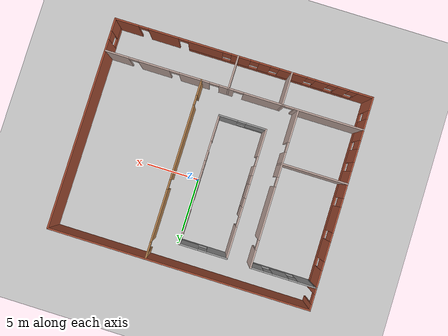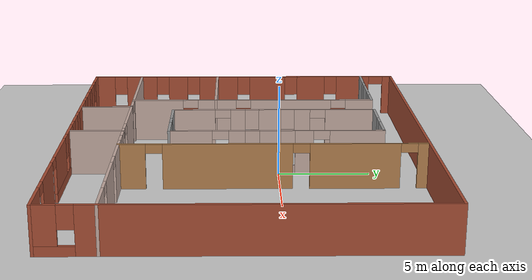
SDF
<sdf version="1.6">
 <world name="default">
  <model name="ground_plane">
   <static>1</static>
   <link name="link">
    <collision name="collision">
     <geometry><plane><normal>0 0 1</normal><size>100 100</size></plane></geometry>
     <surface>
      <contact><collide_bitmask>65535</collide_bitmask></contact>
      <friction><ode><mu>100</mu><mu2>50</mu2></ode></friction>
     </surface>
    </collision>
    <visual name="visual">
     <cast_shadows>0</cast_shadows>
     <geometry><plane><normal>0 0 1</normal><size>100 100</size></plane></geometry>
     <material>
      <script><uri>file://media/materials/scripts/gazebo.material</uri><name>Gazebo/Grey</name></script>
     </material>
    </visual>
   </link>
  </model>
  <model name="Building">
   <pose>-0.7082 -1.8337 0 0 -0 0</pose>
   <link name="Wall_0">
    <pose>-11.9964 0 0 0 -0 1.5708</pose>
    <visual name="Wall_0_Visual_0">
     <pose>-9.18969 0 1.25 0 -0 0</pose>
     <geometry><box><size>1.27061 0.15 2.5</size></box></geometry>
     <material>
      <script><uri>file://media/materials/scripts/gazebo.material</uri><name>Gazebo/Bricks</name></script>
      <ambient>0.760784 0.662745 0.627451 1</ambient>
     </material>
     <meta><layer>0</layer></meta>
    </visual>
    <collision name="Wall_0_Collision_0">
     <geometry><box><size>1.27061 0.15 2.5</size></box></geometry>
     <pose>-9.18969 0 1.25 0 -0 0</pose>
    </collision>
    <visual name="Wall_0_Visual_1">
     <pose>9.51531 0 1.25 0 -0 0</pose>
     <geometry><box><size>0.619384 0.15 2.5</size></box></geometry>
     <material>
      <script><uri>file://media/materials/scripts/gazebo.material</uri><name>Gazebo/Bricks</name></script>
      <ambient>0.760784 0.662745 0.627451 1</ambient>
     </material>
     <meta><layer>0</layer></meta>
    </visual>
    <collision name="Wall_0_Collision_1">
     <geometry><box><size>0.619384 0.15 2.5</size></box></geometry>
     <pose>9.51531 0 1.25 0 -0 0</pose>
    </collision>
    <visual name="Wall_0_Visual_2">
     <pose>-0.124385 0 0.25 0 -0 0</pose>
     <geometry><box><size>16.86 0.15 0.5</size></box></geometry>
     <material>
      <script><uri>file://media/materials/scripts/gazebo.material</uri><name>Gazebo/Bricks</name></script>
      <ambient>0.760784 0.662745 0.627451 1</ambient>
     </material>
     <meta><layer>0</layer></meta>
    </visual>
    <collision name="Wall_0_Collision_2">
     <geometry><box><size>16.86 0.15 0.5</size></box></geometry>
     <pose>-0.124385 0 0.25 0 -0 0</pose>
    </collision>
    <visual name="Wall_0_Visual_3">
     <pose>-6.76332 0 1.5 0 -0 0</pose>
     <geometry><box><size>1.98213 0.15 2</size></box></geometry>
     <material>
      <script><uri>file://media/materials/scripts/gazebo.material</uri><name>Gazebo/Bricks</name></script>
      <ambient>0.760784 0.662745 0.627451 1</ambient>
     </material>
     <meta><layer>0</layer></meta>
    </visual>
    <collision name="Wall_0_Collision_3">
     <geometry><box><size>1.98213 0.15 2</size></box></geometry>
     <pose>-6.76332 0 1.5 0 -0 0</pose>
    </collision>
    <visual name="Wall_0_Visual_4">
     <pose>-4.35571 0 1.5 0 -0 0</pose>
     <geometry><box><size>1.2331 0.15 2</size></box></geometry>
     <material>
      <script><uri>file://media/materials/scripts/gazebo.material</uri><name>Gazebo/Bricks</name></script>
      <ambient>0.760784 0.662745 0.627451 1</ambient>
     </material>
     <meta><layer>0</layer></meta>
    </visual>
    <collision name="Wall_0_Collision_4">
     <geometry><box><size>1.2331 0.15 2</size></box></geometry>
     <pose>-4.35571 0 1.5 0 -0 0</pose>
    </collision>
    <visual name="Wall_0_Visual_5">
     <pose>-1.68058 0 1.5 0 -0 0</pose>
     <geometry><box><size>2.51715 0.15 2</size></box></geometry>
     <material>
      <script><uri>file://media/materials/scripts/gazebo.material</uri><name>Gazebo/Bricks</name></script>
      <ambient>0.760784 0.662745 0.627451 1</ambient>
     </material>
     <meta><layer>0</layer></meta>
    </visual>
    <collision name="Wall_0_Collision_5">
     <geometry><box><size>2.51715 0.15 2</size></box></geometry>
     <pose>-1.68058 0 1.5 0 -0 0</pose>
    </collision>
    <visual name="Wall_0_Visual_6">
     <pose>1.55632 0 1.5 0 -0 0</pose>
     <geometry><box><size>2.35665 0.15 2</size></box></geometry>
     <material>
      <script><uri>file://media/materials/scripts/gazebo.material</uri><name>Gazebo/Bricks</name></script>
      <ambient>0.760784 0.662745 0.627451 1</ambient>
     </material>
     <meta><layer>0</layer></meta>
    </visual>
    <collision name="Wall_0_Collision_6">
     <geometry><box><size>2.35665 0.15 2</size></box></geometry>
     <pose>1.55632 0 1.5 0 -0 0</pose>
    </collision>
    <visual name="Wall_0_Visual_7">
     <pose>4.44545 0 1.5 0 -0 0</pose>
     <geometry><box><size>1.82162 0.15 2</size></box></geometry>
     <material>
      <script><uri>file://media/materials/scripts/gazebo.material</uri><name>Gazebo/Bricks</name></script>
      <ambient>0.760784 0.662745 0.627451 1</ambient>
     </material>
     <meta><layer>0</layer></meta>
    </visual>
    <collision name="Wall_0_Collision_7">
     <geometry><box><size>1.82162 0.15 2</size></box></geometry>
     <pose>4.44545 0 1.5 0 -0 0</pose>
    </collision>
    <visual name="Wall_0_Visual_8">
     <pose>7.23094 0 1.5 0 -0 0</pose>
     <geometry><box><size>2.14935 0.15 2</size></box></geometry>
     <material>
      <script><uri>file://media/materials/scripts/gazebo.material</uri><name>Gazebo/Bricks</name></script>
      <ambient>0.760784 0.662745 0.627451 1</ambient>
     </material>
     <meta><layer>0</layer></meta>
    </visual>
    <collision name="Wall_0_Collision_8">
     <geometry><box><size>2.14935 0.15 2</size></box></geometry>
     <pose>7.23094 0 1.5 0 -0 0</pose>
    </collision>
    <visual name="Wall_0_Visual_9">
     <pose>-8.15439 0 1.9 0 -0 0</pose>
     <geometry><box><size>0.8 0.15 1.2</size></box></geometry>
     <material>
      <script><uri>file://media/materials/scripts/gazebo.material</uri><name>Gazebo/Bricks</name></script>
      <ambient>0.760784 0.662745 0.627451 1</ambient>
     </material>
     <meta><layer>0</layer></meta>
    </visual>
    <collision name="Wall_0_Collision_9">
     <geometry><box><size>0.8 0.15 1.2</size></box></geometry>
     <pose>-8.15439 0 1.9 0 -0 0</pose>
    </collision>
    <visual name="Wall_0_Visual_10">
     <pose>-5.37226 0 1.9 0 -0 0</pose>
     <geometry><box><size>0.8 0.15 1.2</size></box></geometry>
     <material>
      <script><uri>file://media/materials/scripts/gazebo.material</uri><name>Gazebo/Bricks</name></script>
      <ambient>0.760784 0.662745 0.627451 1</ambient>
     </material>
     <meta><layer>0</layer></meta>
    </visual>
    <collision name="Wall_0_Collision_10">
     <geometry><box><size>0.8 0.15 1.2</size></box></geometry>
     <pose>-5.37226 0 1.9 0 -0 0</pose>
    </collision>
    <visual name="Wall_0_Visual_11">
     <pose>-3.33916 0 1.9 0 -0 0</pose>
     <geometry><box><size>0.8 0.15 1.2</size></box></geometry>
     <material>
      <script><uri>file://media/materials/scripts/gazebo.material</uri><name>Gazebo/Bricks</name></script>
      <ambient>0.760784 0.662745 0.627451 1</ambient>
     </material>
     <meta><layer>0</layer></meta>
    </visual>
    <collision name="Wall_0_Collision_11">
     <geometry><box><size>0.8 0.15 1.2</size></box></geometry>
     <pose>-3.33916 0 1.9 0 -0 0</pose>
    </collision>
    <visual name="Wall_0_Visual_12">
     <pose>-0.022006 0 1.9 0 -0 0</pose>
     <geometry><box><size>0.8 0.15 1.2</size></box></geometry>
     <material>
      <script><uri>file://media/materials/scripts/gazebo.material</uri><name>Gazebo/Bricks</name></script>
      <ambient>0.760784 0.662745 0.627451 1</ambient>
     </material>
     <meta><layer>0</layer></meta>
    </visual>
    <collision name="Wall_0_Collision_12">
     <geometry><box><size>0.8 0.15 1.2</size></box></geometry>
     <pose>-0.022006 0 1.9 0 -0 0</pose>
    </collision>
    <visual name="Wall_0_Visual_13">
     <pose>3.13464 0 1.9 0 -0 0</pose>
     <geometry><box><size>0.8 0.15 1.2</size></box></geometry>
     <material>
      <script><uri>file://media/materials/scripts/gazebo.material</uri><name>Gazebo/Bricks</name></script>
      <ambient>0.760784 0.662745 0.627451 1</ambient>
     </material>
     <meta><layer>0</layer></meta>
    </visual>
    <collision name="Wall_0_Collision_13">
     <geometry><box><size>0.8 0.15 1.2</size></box></geometry>
     <pose>3.13464 0 1.9 0 -0 0</pose>
    </collision>
    <visual name="Wall_0_Visual_14">
     <pose>5.75626 0 1.9 0 -0 0</pose>
     <geometry><box><size>0.8 0.15 1.2</size></box></geometry>
     <material>
      <script><uri>file://media/materials/scripts/gazebo.material</uri><name>Gazebo/Bricks</name></script>
      <ambient>0.760784 0.662745 0.627451 1</ambient>
     </material>
     <meta><layer>0</layer></meta>
    </visual>
    <collision name="Wall_0_Collision_14">
     <geometry><box><size>0.8 0.15 1.2</size></box></geometry>
     <pose>5.75626 0 1.9 0 -0 0</pose>
    </collision>
    <visual name="Wall_0_Visual_15">
     <pose>8.75562 0 2.25 0 -0 0</pose>
     <geometry><box><size>0.9 0.15 0.5</size></box></geometry>
     <material>
      <script><uri>file://media/materials/scripts/gazebo.material</uri><name>Gazebo/Bricks</name></script>
      <ambient>0.760784 0.662745 0.627451 1</ambient>
     </material>
     <meta><layer>0</layer></meta>
    </visual>
    <collision name="Wall_0_Collision_15">
     <geometry><box><size>0.9 0.15 0.5</size></box></geometry>
     <pose>8.75562 0 2.25 0 -0 0</pose>
    </collision>
   </link>
   <link name="Wall_12">
    <pose>3.00359 1.5 0 0 -0 1.5708</pose>
    <visual name="Wall_12_Visual_0">
     <pose>-7.57545 0 1.25 0 -0 0</pose>
     <geometry><box><size>1.49911 0.15 2.5</size></box></geometry>
     <material>
      <script><uri>file://media/materials/scripts/gazebo.material</uri><name>Gazebo/Wood</name></script>
      <ambient>0.760784 0.662745 0.627451 1</ambient>
     </material>
     <meta><layer>0</layer></meta>
    </visual>
    <collision name="Wall_12_Collision_0">
     <geometry><box><size>1.49911 0.15 2.5</size></box></geometry>
     <pose>-7.57545 0 1.25 0 -0 0</pose>
    </collision>
    <visual name="Wall_12_Visual_1">
     <pose>-2.46788 0 1.25 0 -0 0</pose>
     <geometry><box><size>6.91602 0.15 2.5</size></box></geometry>
     <material>
      <script><uri>file://media/materials/scripts/gazebo.material</uri><name>Gazebo/Wood</name></script>
      <ambient>0.760784 0.662745 0.627451 1</ambient>
     </material>
     <meta><layer>0</layer></meta>
    </visual>
    <collision name="Wall_12_Collision_1">
     <geometry><box><size>6.91602 0.15 2.5</size></box></geometry>
     <pose>-2.46788 0 1.25 0 -0 0</pose>
    </collision>
    <visual name="Wall_12_Visual_2">
     <pose>4.30135 0 1.25 0 -0 0</pose>
     <geometry><box><size>4.82244 0.15 2.5</size></box></geometry>
     <material>
      <script><uri>file://media/materials/scripts/gazebo.material</uri><name>Gazebo/Wood</name></script>
      <ambient>0.760784 0.662745 0.627451 1</ambient>
     </material>
     <meta><layer>0</layer></meta>
    </visual>
    <collision name="Wall_12_Collision_2">
     <geometry><box><size>4.82244 0.15 2.5</size></box></geometry>
     <pose>4.30135 0 1.25 0 -0 0</pose>
    </collision>
    <visual name="Wall_12_Visual_3">
     <pose>7.96878 0 1.25 0 -0 0</pose>
     <geometry><box><size>0.712432 0.15 2.5</size></box></geometry>
     <material>
      <script><uri>file://media/materials/scripts/gazebo.material</uri><name>Gazebo/Wood</name></script>
      <ambient>0.760784 0.662745 0.627451 1</ambient>
     </material>
     <meta><layer>0</layer></meta>
    </visual>
    <collision name="Wall_12_Collision_3">
     <geometry><box><size>0.712432 0.15 2.5</size></box></geometry>
     <pose>7.96878 0 1.25 0 -0 0</pose>
    </collision>
    <visual name="Wall_12_Visual_4">
     <pose>-6.37589 0 2.25 0 -0 0</pose>
     <geometry><box><size>0.9 0.15 0.5</size></box></geometry>
     <material>
      <script><uri>file://media/materials/scripts/gazebo.material</uri><name>Gazebo/Wood</name></script>
      <ambient>0.760784 0.662745 0.627451 1</ambient>
     </material>
     <meta><layer>0</layer></meta>
    </visual>
    <collision name="Wall_12_Collision_4">
     <geometry><box><size>0.9 0.15 0.5</size></box></geometry>
     <pose>-6.37589 0 2.25 0 -0 0</pose>
    </collision>
    <visual name="Wall_12_Visual_5">
     <pose>1.44013 0 2.25 0 -0 0</pose>
     <geometry><box><size>0.9 0.15 0.5</size></box></geometry>
     <material>
      <script><uri>file://media/materials/scripts/gazebo.material</uri><name>Gazebo/Wood</name></script>
      <ambient>0.760784 0.662745 0.627451 1</ambient>
     </material>
     <meta><layer>0</layer></meta>
    </visual>
    <collision name="Wall_12_Collision_5">
     <geometry><box><size>0.9 0.15 0.5</size></box></geometry>
     <pose>1.44013 0 2.25 0 -0 0</pose>
    </collision>
    <visual name="Wall_12_Visual_6">
     <pose>7.16257 0 2.25 0 -0 0</pose>
     <geometry><box><size>0.9 0.15 0.5</size></box></geometry>
     <material>
      <script><uri>file://media/materials/scripts/gazebo.material</uri><name>Gazebo/Wood</name></script>
      <ambient>0.760784 0.662745 0.627451 1</ambient>
     </material>
     <meta><layer>0</layer></meta>
    </visual>
    <collision name="Wall_12_Collision_6">
     <geometry><box><size>0.9 0.15 0.5</size></box></geometry>
     <pose>7.16257 0 2.25 0 -0 0</pose>
    </collision>
   </link>
   <link name="Wall_14">
    <collision name="Wall_14_Collision">
     <geometry><box><size>3.15 0.15 2.5</size></box></geometry>
     <pose>0 0 1.25 0 -0 0</pose>
    </collision>
    <visual name="Wall_14_Visual">
     <pose>0 0 1.25 0 -0 0</pose>
     <geometry><box><size>3.15 0.15 2.5</size></box></geometry>
     <material>
      <script><uri>file://media/materials/scripts/gazebo.material</uri><name>Gazebo/Grey</name></script>
      <ambient>0.760784 0.662745 0.627451 1</ambient>
     </material>
     <meta><layer>0</layer></meta>
    </visual>
    <pose>-4.49641 -8.25 0 0 -0 1.5708</pose>
   </link>
   <link name="Wall_16">
    <collision name="Wall_16_Collision">
     <geometry><box><size>3.15 0.15 2.5</size></box></geometry>
     <pose>0 0 1.25 0 -0 0</pose>
    </collision>
    <visual name="Wall_16_Visual">
     <pose>0 0 1.25 0 -0 0</pose>
     <geometry><box><size>3.15 0.15 2.5</size></box></geometry>
     <material>
      <script><uri>file://media/materials/scripts/gazebo.material</uri><name>Gazebo/Grey</name></script>
      <ambient>0.760784 0.662745 0.627451 1</ambient>
     </material>
     <meta><layer>0</layer></meta>
    </visual>
    <pose>0.50359 -8.25 0 0 -0 1.5708</pose>
   </link>
   <link name="Wall_18">
    <pose>-5.99641 0.5 0 0 0 -1.5708</pose>
    <visual name="Wall_18_Visual_0">
     <pose>-6.48888 0 1.25 0 -0 0</pose>
     <geometry><box><size>1.67224 0.15 2.5</size></box></geometry>
     <material>
      <script><uri>file://media/materials/scripts/gazebo.material</uri><name>Gazebo/Grey</name></script>
      <ambient>0.760784 0.662745 0.627451 1</ambient>
     </material>
     <meta><layer>0</layer></meta>
    </visual>
    <collision name="Wall_18_Collision_0">
     <geometry><box><size>1.67224 0.15 2.5</size></box></geometry>
     <pose>-6.48888 0 1.25 0 -0 0</pose>
    </collision>
    <visual name="Wall_18_Visual_1">
     <pose>-2.31363 0 1.25 0 -0 0</pose>
     <geometry><box><size>4.87827 0.15 2.5</size></box></geometry>
     <material>
      <script><uri>file://media/materials/scripts/gazebo.material</uri><name>Gazebo/Grey</name></script>
      <ambient>0.760784 0.662745 0.627451 1</ambient>
     </material>
     <meta><layer>0</layer></meta>
    </visual>
    <collision name="Wall_18_Collision_1">
     <geometry><box><size>4.87827 0.15 2.5</size></box></geometry>
     <pose>-2.31363 0 1.25 0 -0 0</pose>
    </collision>
    <visual name="Wall_18_Visual_2">
     <pose>2.18058 0 1.25 0 -0 0</pose>
     <geometry><box><size>2.31015 0.15 2.5</size></box></geometry>
     <material>
      <script><uri>file://media/materials/scripts/gazebo.material</uri><name>Gazebo/Grey</name></script>
      <ambient>0.760784 0.662745 0.627451 1</ambient>
     </material>
     <meta><layer>0</layer></meta>
    </visual>
    <collision name="Wall_18_Collision_2">
     <geometry><box><size>2.31015 0.15 2.5</size></box></geometry>
     <pose>2.18058 0 1.25 0 -0 0</pose>
    </collision>
    <visual name="Wall_18_Visual_3">
     <pose>5.78033 0 1.25 0 -0 0</pose>
     <geometry><box><size>3.08934 0.15 2.5</size></box></geometry>
     <material>
      <script><uri>file://media/materials/scripts/gazebo.material</uri><name>Gazebo/Grey</name></script>
      <ambient>0.760784 0.662745 0.627451 1</ambient>
     </material>
     <meta><layer>0</layer></meta>
    </visual>
    <collision name="Wall_18_Collision_3">
     <geometry><box><size>3.08934 0.15 2.5</size></box></geometry>
     <pose>5.78033 0 1.25 0 -0 0</pose>
    </collision>
    <visual name="Wall_18_Visual_4">
     <pose>-5.20276 0 2.25 0 -0 0</pose>
     <geometry><box><size>0.9 0.15 0.5</size></box></geometry>
     <material>
      <script><uri>file://media/materials/scripts/gazebo.material</uri><name>Gazebo/Grey</name></script>
      <ambient>0.760784 0.662745 0.627451 1</ambient>
     </material>
     <meta><layer>0</layer></meta>
    </visual>
    <collision name="Wall_18_Collision_4">
     <geometry><box><size>0.9 0.15 0.5</size></box></geometry>
     <pose>-5.20276 0 2.25 0 -0 0</pose>
    </collision>
    <visual name="Wall_18_Visual_5">
     <pose>0.575509 0 2.25 0 -0 0</pose>
     <geometry><box><size>0.9 0.15 0.5</size></box></geometry>
     <material>
      <script><uri>file://media/materials/scripts/gazebo.material</uri><name>Gazebo/Grey</name></script>
      <ambient>0.760784 0.662745 0.627451 1</ambient>
     </material>
     <meta><layer>0</layer></meta>
    </visual>
    <collision name="Wall_18_Collision_5">
     <geometry><box><size>0.9 0.15 0.5</size></box></geometry>
     <pose>0.575509 0 2.25 0 -0 0</pose>
    </collision>
    <visual name="Wall_18_Visual_6">
     <pose>3.78566 0 2.25 0 -0 0</pose>
     <geometry><box><size>0.9 0.15 0.5</size></box></geometry>
     <material>
      <script><uri>file://media/materials/scripts/gazebo.material</uri><name>Gazebo/Grey</name></script>
      <ambient>0.760784 0.662745 0.627451 1</ambient>
     </material>
     <meta><layer>0</layer></meta>
    </visual>
    <collision name="Wall_18_Collision_6">
     <geometry><box><size>0.9 0.15 0.5</size></box></geometry>
     <pose>3.78566 0 2.25 0 -0 0</pose>
    </collision>
   </link>
   <link name="Wall_2">
    <collision name="Wall_2_Collision">
     <geometry><box><size>24.15 0.15 2.5</size></box></geometry>
     <pose>0 0 1.25 0 -0 0</pose>
    </collision>
    <visual name="Wall_2_Visual">
     <pose>0 0 1.25 0 -0 0</pose>
     <geometry><box><size>24.15 0.15 2.5</size></box></geometry>
     <material>
      <script><uri>file://media/materials/scripts/gazebo.material</uri><name>Gazebo/Bricks</name></script>
      <ambient>0.760784 0.662745 0.627451 1</ambient>
     </material>
     <meta><layer>0</layer></meta>
    </visual>
    <pose>0.00359 9.75 0 0 -0 3.14159</pose>
   </link>
   <link name="Wall_20">
    <collision name="Wall_20_Collision">
     <geometry><box><size>0.29021 0.15 2.5</size></box></geometry>
     <pose>0 0 1.25 0 -0 0</pose>
    </collision>
    <visual name="Wall_20_Visual">
     <pose>0 0 1.25 0 -0 0</pose>
     <geometry><box><size>0.29021 0.15 2.5</size></box></geometry>
     <material>
      <script><uri>file://media/materials/scripts/gazebo.material</uri><name>Gazebo/Grey</name></script>
      <ambient>1 1 1 1</ambient>
     </material>
     <meta><layer>0</layer></meta>
    </visual>
    <pose>-11.9267 7.74293 0 0 -0 3.04054</pose>
   </link>
   <link name="Wall_21">
    <pose>-8.99641 7.75 0 0 -0 0</pose>
    <visual name="Wall_21_Visual_0">
     <pose>-2.17796 0 1.25 0 -0 0</pose>
     <geometry><box><size>1.79409 0.15 2.5</size></box></geometry>
     <material>
      <script><uri>file://media/materials/scripts/gazebo.material</uri><name>Gazebo/Grey</name></script>
      <ambient>1 1 1 1</ambient>
     </material>
     <meta><layer>0</layer></meta>
    </visual>
    <collision name="Wall_21_Collision_0">
     <geometry><box><size>1.79409 0.15 2.5</size></box></geometry>
     <pose>-2.17796 0 1.25 0 -0 0</pose>
    </collision>
    <visual name="Wall_21_Visual_1">
     <pose>0.897044 0 0.25 0 -0 0</pose>
     <geometry><box><size>4.35591 0.15 0.5</size></box></geometry>
     <material>
      <script><uri>file://media/materials/scripts/gazebo.material</uri><name>Gazebo/Grey</name></script>
      <ambient>1 1 1 1</ambient>
     </material>
     <meta><layer>0</layer></meta>
    </visual>
    <collision name="Wall_21_Collision_1">
     <geometry><box><size>4.35591 0.15 0.5</size></box></geometry>
     <pose>0.897044 0 0.25 0 -0 0</pose>
    </collision>
    <visual name="Wall_21_Visual_2">
     <pose>0.269391 0 1.5 0 -0 0</pose>
     <geometry><box><size>1.50061 0.15 2</size></box></geometry>
     <material>
      <script><uri>file://media/materials/scripts/gazebo.material</uri><name>Gazebo/Grey</name></script>
      <ambient>1 1 1 1</ambient>
     </material>
     <meta><layer>0</layer></meta>
    </visual>
    <collision name="Wall_21_Collision_2">
     <geometry><box><size>1.50061 0.15 2</size></box></geometry>
     <pose>0.269391 0 1.5 0 -0 0</pose>
    </collision>
    <visual name="Wall_21_Visual_3">
     <pose>2.44735 0 1.5 0 -0 0</pose>
     <geometry><box><size>1.2553 0.15 2</size></box></geometry>
     <material>
      <script><uri>file://media/materials/scripts/gazebo.material</uri><name>Gazebo/Grey</name></script>
      <ambient>1 1 1 1</ambient>
     </material>
     <meta><layer>0</layer></meta>
    </visual>
    <collision name="Wall_21_Collision_3">
     <geometry><box><size>1.2553 0.15 2</size></box></geometry>
     <pose>2.44735 0 1.5 0 -0 0</pose>
    </collision>
    <visual name="Wall_21_Visual_4">
     <pose>-0.880913 0 1.9 0 -0 0</pose>
     <geometry><box><size>0.8 0.15 1.2</size></box></geometry>
     <material>
      <script><uri>file://media/materials/scripts/gazebo.material</uri><name>Gazebo/Grey</name></script>
      <ambient>1 1 1 1</ambient>
     </material>
     <meta><layer>0</layer></meta>
    </visual>
    <collision name="Wall_21_Collision_4">
     <geometry><box><size>0.8 0.15 1.2</size></box></geometry>
     <pose>-0.880913 0 1.9 0 -0 0</pose>
    </collision>
    <visual name="Wall_21_Visual_5">
     <pose>1.41969 0 1.9 0 -0 0</pose>
     <geometry><box><size>0.8 0.15 1.2</size></box></geometry>
     <material>
      <script><uri>file://media/materials/scripts/gazebo.material</uri><name>Gazebo/Grey</name></script>
      <ambient>1 1 1 1</ambient>
     </material>
     <meta><layer>0</layer></meta>
    </visual>
    <collision name="Wall_21_Collision_5">
     <geometry><box><size>0.8 0.15 1.2</size></box></geometry>
     <pose>1.41969 0 1.9 0 -0 0</pose>
    </collision>
   </link>
   <link name="Wall_23">
    <collision name="Wall_23_Collision">
     <geometry><box><size>6.15 0.15 2.5</size></box></geometry>
     <pose>0 0 1.25 0 -0 0</pose>
    </collision>
    <visual name="Wall_23_Visual">
     <pose>0 0 1.25 0 -0 0</pose>
     <geometry><box><size>6.15 0.15 2.5</size></box></geometry>
     <material>
      <script><uri>file://media/materials/scripts/gazebo.material</uri><name>Gazebo/Grey</name></script>
      <ambient>0.760784 0.662745 0.627451 1</ambient>
     </material>
     <meta><layer>0</layer></meta>
    </visual>
    <pose>-8.99641 -1.75 0 0 -0 0</pose>
   </link>
   <link name="Wall_25">
    <pose>-1.60304 7.62885 0 0 -0 0</pose>
    <visual name="Wall_25_Visual_0">
     <pose>-1.28892 0 1.25 0 -0 0</pose>
     <geometry><box><size>1.92216 0.15 2.5</size></box></geometry>
     <material>
      <script><uri>file://media/materials/scripts/gazebo.material</uri><name>Gazebo/Grey</name></script>
      <ambient>1 1 1 1</ambient>
     </material>
     <meta><layer>0</layer></meta>
    </visual>
    <collision name="Wall_25_Collision_0">
     <geometry><box><size>1.92216 0.15 2.5</size></box></geometry>
     <pose>-1.28892 0 1.25 0 -0 0</pose>
    </collision>
    <visual name="Wall_25_Visual_1">
     <pose>0.961079 0 0.25 0 -0 0</pose>
     <geometry><box><size>2.57784 0.15 0.5</size></box></geometry>
     <material>
      <script><uri>file://media/materials/scripts/gazebo.material</uri><name>Gazebo/Grey</name></script>
      <ambient>1 1 1 1</ambient>
     </material>
     <meta><layer>0</layer></meta>
    </visual>
    <collision name="Wall_25_Collision_1">
     <geometry><box><size>2.57784 0.15 0.5</size></box></geometry>
     <pose>0.961079 0 0.25 0 -0 0</pose>
    </collision>
    <visual name="Wall_25_Visual_2">
     <pose>1.36108 0 1.5 0 -0 0</pose>
     <geometry><box><size>1.77784 0.15 2</size></box></geometry>
     <material>
      <script><uri>file://media/materials/scripts/gazebo.material</uri><name>Gazebo/Grey</name></script>
      <ambient>1 1 1 1</ambient>
     </material>
     <meta><layer>0</layer></meta>
    </visual>
    <collision name="Wall_25_Collision_2">
     <geometry><box><size>1.77784 0.15 2</size></box></geometry>
     <pose>1.36108 0 1.5 0 -0 0</pose>
    </collision>
    <visual name="Wall_25_Visual_3">
     <pose>0.072158 0 1.9 0 -0 0</pose>
     <geometry><box><size>0.8 0.15 1.2</size></box></geometry>
     <material>
      <script><uri>file://media/materials/scripts/gazebo.material</uri><name>Gazebo/Grey</name></script>
      <ambient>1 1 1 1</ambient>
     </material>
     <meta><layer>0</layer></meta>
    </visual>
    <collision name="Wall_25_Collision_3">
     <geometry><box><size>0.8 0.15 1.2</size></box></geometry>
     <pose>0.072158 0 1.9 0 -0 0</pose>
    </collision>
   </link>
   <link name="Wall_26">
    <pose>0.571963 1.70385 0 0 0 -1.5708</pose>
    <visual name="Wall_26_Visual_0">
     <pose>-4.47121 0 1.25 0 -0 0</pose>
     <geometry><box><size>3.05758 0.15 2.5</size></box></geometry>
     <material>
      <script><uri>file://media/materials/scripts/gazebo.material</uri><name>Gazebo/Grey</name></script>
      <ambient>0.760784 0.662745 0.627451 1</ambient>
     </material>
     <meta><layer>0</layer></meta>
    </visual>
    <collision name="Wall_26_Collision_0">
     <geometry><box><size>3.05758 0.15 2.5</size></box></geometry>
     <pose>-4.47121 0 1.25 0 -0 0</pose>
    </collision>
    <visual name="Wall_26_Visual_1">
     <pose>-1.53694 0 1.25 0 -0 0</pose>
     <geometry><box><size>1.01096 0.15 2.5</size></box></geometry>
     <material>
      <script><uri>file://media/materials/scripts/gazebo.material</uri><name>Gazebo/Grey</name></script>
      <ambient>0.760784 0.662745 0.627451 1</ambient>
     </material>
     <meta><layer>0</layer></meta>
    </visual>
    <collision name="Wall_26_Collision_1">
     <geometry><box><size>1.01096 0.15 2.5</size></box></geometry>
     <pose>-1.53694 0 1.25 0 -0 0</pose>
    </collision>
    <visual name="Wall_26_Visual_2">
     <pose>4.77022 0 1.25 0 -0 0</pose>
     <geometry><box><size>2.45955 0.15 2.5</size></box></geometry>
     <material>
      <script><uri>file://media/materials/scripts/gazebo.material</uri><name>Gazebo/Grey</name></script>
      <ambient>0.760784 0.662745 0.627451 1</ambient>
     </material>
     <meta><layer>0</layer></meta>
    </visual>
    <collision name="Wall_26_Collision_2">
     <geometry><box><size>2.45955 0.15 2.5</size></box></geometry>
     <pose>4.77022 0 1.25 0 -0 0</pose>
    </collision>
    <visual name="Wall_26_Visual_3">
     <pose>0.804492 0 0.25 0 -0 0</pose>
     <geometry><box><size>3.67191 0.15 0.5</size></box></geometry>
     <material>
      <script><uri>file://media/materials/scripts/gazebo.material</uri><name>Gazebo/Grey</name></script>
      <ambient>0.760784 0.662745 0.627451 1</ambient>
     </material>
     <meta><layer>0</layer></meta>
    </visual>
    <collision name="Wall_26_Collision_3">
     <geometry><box><size>3.67191 0.15 0.5</size></box></geometry>
     <pose>0.804492 0 0.25 0 -0 0</pose>
    </collision>
    <visual name="Wall_26_Visual_4">
     <pose>0.345537 0 1.5 0 -0 0</pose>
     <geometry><box><size>1.154 0.15 2</size></box></geometry>
     <material>
      <script><uri>file://media/materials/scripts/gazebo.material</uri><name>Gazebo/Grey</name></script>
      <ambient>0.760784 0.662745 0.627451 1</ambient>
     </material>
     <meta><layer>0</layer></meta>
    </visual>
    <collision name="Wall_26_Collision_4">
     <geometry><box><size>1.154 0.15 2</size></box></geometry>
     <pose>0.345537 0 1.5 0 -0 0</pose>
    </collision>
    <visual name="Wall_26_Visual_5">
     <pose>2.18149 0 1.5 0 -0 0</pose>
     <geometry><box><size>0.917909 0.15 2</size></box></geometry>
     <material>
      <script><uri>file://media/materials/scripts/gazebo.material</uri><name>Gazebo/Grey</name></script>
      <ambient>0.760784 0.662745 0.627451 1</ambient>
     </material>
     <meta><layer>0</layer></meta>
    </visual>
    <collision name="Wall_26_Collision_5">
     <geometry><box><size>0.917909 0.15 2</size></box></geometry>
     <pose>2.18149 0 1.5 0 -0 0</pose>
    </collision>
    <visual name="Wall_26_Visual_6">
     <pose>-0.631465 0 1.9 0 -0 0</pose>
     <geometry><box><size>0.8 0.15 1.2</size></box></geometry>
     <material>
      <script><uri>file://media/materials/scripts/gazebo.material</uri><name>Gazebo/Grey</name></script>
      <ambient>0.760784 0.662745 0.627451 1</ambient>
     </material>
     <meta><layer>0</layer></meta>
    </visual>
    <collision name="Wall_26_Collision_6">
     <geometry><box><size>0.8 0.15 1.2</size></box></geometry>
     <pose>-0.631465 0 1.9 0 -0 0</pose>
    </collision>
    <visual name="Wall_26_Visual_7">
     <pose>1.32254 0 1.9 0 -0 0</pose>
     <geometry><box><size>0.8 0.15 1.2</size></box></geometry>
     <material>
      <script><uri>file://media/materials/scripts/gazebo.material</uri><name>Gazebo/Grey</name></script>
      <ambient>0.760784 0.662745 0.627451 1</ambient>
     </material>
     <meta><layer>0</layer></meta>
    </visual>
    <collision name="Wall_26_Collision_7">
     <geometry><box><size>0.8 0.15 1.2</size></box></geometry>
     <pose>1.32254 0 1.9 0 -0 0</pose>
    </collision>
    <visual name="Wall_26_Visual_8">
     <pose>-2.49242 0 2.25 0 -0 0</pose>
     <geometry><box><size>0.9 0.15 0.5</size></box></geometry>
     <material>
      <script><uri>file://media/materials/scripts/gazebo.material</uri><name>Gazebo/Grey</name></script>
      <ambient>0.760784 0.662745 0.627451 1</ambient>
     </material>
     <meta><layer>0</layer></meta>
    </visual>
    <collision name="Wall_26_Collision_8">
     <geometry><box><size>0.9 0.15 0.5</size></box></geometry>
     <pose>-2.49242 0 2.25 0 -0 0</pose>
    </collision>
    <visual name="Wall_26_Visual_9">
     <pose>3.09045 0 2.25 0 -0 0</pose>
     <geometry><box><size>0.9 0.15 0.5</size></box></geometry>
     <material>
      <script><uri>file://media/materials/scripts/gazebo.material</uri><name>Gazebo/Grey</name></script>
      <ambient>0.760784 0.662745 0.627451 1</ambient>
     </material>
     <meta><layer>0</layer></meta>
    </visual>
    <collision name="Wall_26_Collision_9">
     <geometry><box><size>0.9 0.15 0.5</size></box></geometry>
     <pose>3.09045 0 2.25 0 -0 0</pose>
    </collision>
   </link>
   <link name="Wall_27">
    <pose>-1.60304 -4.22115 0 0 -0 3.14159</pose>
    <visual name="Wall_27_Visual_0">
     <pose>-1.36108 0 1.25 0 -0 0</pose>
     <geometry><box><size>1.77784 0.15 2.5</size></box></geometry>
     <material>
      <script><uri>file://media/materials/scripts/gazebo.material</uri><name>Gazebo/Grey</name></script>
      <ambient>1 1 1 1</ambient>
     </material>
     <meta><layer>0</layer></meta>
    </visual>
    <collision name="Wall_27_Collision_0">
     <geometry><box><size>1.77784 0.15 2.5</size></box></geometry>
     <pose>-1.36108 0 1.25 0 -0 0</pose>
    </collision>
    <visual name="Wall_27_Visual_1">
     <pose>0.888921 0 0.25 0 -0 0</pose>
     <geometry><box><size>2.72216 0.15 0.5</size></box></geometry>
     <material>
      <script><uri>file://media/materials/scripts/gazebo.material</uri><name>Gazebo/Grey</name></script>
      <ambient>1 1 1 1</ambient>
     </material>
     <meta><layer>0</layer></meta>
    </visual>
    <collision name="Wall_27_Collision_1">
     <geometry><box><size>2.72216 0.15 0.5</size></box></geometry>
     <pose>0.888921 0 0.25 0 -0 0</pose>
    </collision>
    <visual name="Wall_27_Visual_2">
     <pose>1.28892 0 1.5 0 -0 0</pose>
     <geometry><box><size>1.92216 0.15 2</size></box></geometry>
     <material>
      <script><uri>file://media/materials/scripts/gazebo.material</uri><name>Gazebo/Grey</name></script>
      <ambient>1 1 1 1</ambient>
     </material>
     <meta><layer>0</layer></meta>
    </visual>
    <collision name="Wall_27_Collision_2">
     <geometry><box><size>1.92216 0.15 2</size></box></geometry>
     <pose>1.28892 0 1.5 0 -0 0</pose>
    </collision>
    <visual name="Wall_27_Visual_3">
     <pose>-0.072158 0 1.9 0 -0 0</pose>
     <geometry><box><size>0.8 0.15 1.2</size></box></geometry>
     <material>
      <script><uri>file://media/materials/scripts/gazebo.material</uri><name>Gazebo/Grey</name></script>
      <ambient>1 1 1 1</ambient>
     </material>
     <meta><layer>0</layer></meta>
    </visual>
    <collision name="Wall_27_Collision_3">
     <geometry><box><size>0.8 0.15 1.2</size></box></geometry>
     <pose>-0.072158 0 1.9 0 -0 0</pose>
    </collision>
   </link>
   <link name="Wall_28">
    <pose>-3.77804 1.70385 0 0 -0 1.5708</pose>
    <visual name="Wall_28_Visual_0">
     <pose>-4.7237 0 1.25 0 -0 0</pose>
     <geometry><box><size>2.5526 0.15 2.5</size></box></geometry>
     <material>
      <script><uri>file://media/materials/scripts/gazebo.material</uri><name>Gazebo/Grey</name></script>
      <ambient>0.760784 0.662745 0.627451 1</ambient>
     </material>
     <meta><layer>0</layer></meta>
    </visual>
    <collision name="Wall_28_Collision_0">
     <geometry><box><size>2.5526 0.15 2.5</size></box></geometry>
     <pose>-4.7237 0 1.25 0 -0 0</pose>
    </collision>
    <visual name="Wall_28_Visual_1">
     <pose>-2.11171 0 1.25 0 -0 0</pose>
     <geometry><box><size>0.871385 0.15 2.5</size></box></geometry>
     <material>
      <script><uri>file://media/materials/scripts/gazebo.material</uri><name>Gazebo/Grey</name></script>
      <ambient>0.760784 0.662745 0.627451 1</ambient>
     </material>
     <meta><layer>0</layer></meta>
    </visual>
    <collision name="Wall_28_Collision_1">
     <geometry><box><size>0.871385 0.15 2.5</size></box></geometry>
     <pose>-2.11171 0 1.25 0 -0 0</pose>
    </collision>
    <visual name="Wall_28_Visual_2">
     <pose>4.51774 0 1.25 0 -0 0</pose>
     <geometry><box><size>2.96453 0.15 2.5</size></box></geometry>
     <material>
      <script><uri>file://media/materials/scripts/gazebo.material</uri><name>Gazebo/Grey</name></script>
      <ambient>0.760784 0.662745 0.627451 1</ambient>
     </material>
     <meta><layer>0</layer></meta>
    </visual>
    <collision name="Wall_28_Collision_2">
     <geometry><box><size>2.96453 0.15 2.5</size></box></geometry>
     <pose>4.51774 0 1.25 0 -0 0</pose>
    </collision>
    <visual name="Wall_28_Visual_3">
     <pose>0.229727 0 0.25 0 -0 0</pose>
     <geometry><box><size>3.81148 0.15 0.5</size></box></geometry>
     <material>
      <script><uri>file://media/materials/scripts/gazebo.material</uri><name>Gazebo/Grey</name></script>
      <ambient>0.760784 0.662745 0.627451 1</ambient>
     </material>
     <meta><layer>0</layer></meta>
    </visual>
    <collision name="Wall_28_Collision_3">
     <geometry><box><size>3.81148 0.15 0.5</size></box></geometry>
     <pose>0.229727 0 0.25 0 -0 0</pose>
    </collision>
    <visual name="Wall_28_Visual_4">
     <pose>-0.229227 0 1.5 0 -0 0</pose>
     <geometry><box><size>1.29358 0.15 2</size></box></geometry>
     <material>
      <script><uri>file://media/materials/scripts/gazebo.material</uri><name>Gazebo/Grey</name></script>
      <ambient>0.760784 0.662745 0.627451 1</ambient>
     </material>
     <meta><layer>0</layer></meta>
    </visual>
    <collision name="Wall_28_Collision_4">
     <geometry><box><size>1.29358 0.15 2</size></box></geometry>
     <pose>-0.229227 0 1.5 0 -0 0</pose>
    </collision>
    <visual name="Wall_28_Visual_5">
     <pose>1.67651 0 1.5 0 -0 0</pose>
     <geometry><box><size>0.917909 0.15 2</size></box></geometry>
     <material>
      <script><uri>file://media/materials/scripts/gazebo.material</uri><name>Gazebo/Grey</name></script>
      <ambient>0.760784 0.662745 0.627451 1</ambient>
     </material>
     <meta><layer>0</layer></meta>
    </visual>
    <collision name="Wall_28_Collision_5">
     <geometry><box><size>0.917909 0.15 2</size></box></geometry>
     <pose>1.67651 0 1.5 0 -0 0</pose>
    </collision>
    <visual name="Wall_28_Visual_6">
     <pose>-1.27601 0 1.9 0 -0 0</pose>
     <geometry><box><size>0.8 0.15 1.2</size></box></geometry>
     <material>
      <script><uri>file://media/materials/scripts/gazebo.material</uri><name>Gazebo/Grey</name></script>
      <ambient>0.760784 0.662745 0.627451 1</ambient>
     </material>
     <meta><layer>0</layer></meta>
    </visual>
    <collision name="Wall_28_Collision_6">
     <geometry><box><size>0.8 0.15 1.2</size></box></geometry>
     <pose>-1.27601 0 1.9 0 -0 0</pose>
    </collision>
    <visual name="Wall_28_Visual_7">
     <pose>0.817561 0 1.9 0 -0 0</pose>
     <geometry><box><size>0.8 0.15 1.2</size></box></geometry>
     <material>
      <script><uri>file://media/materials/scripts/gazebo.material</uri><name>Gazebo/Grey</name></script>
      <ambient>0.760784 0.662745 0.627451 1</ambient>
     </material>
     <meta><layer>0</layer></meta>
    </visual>
    <collision name="Wall_28_Collision_7">
     <geometry><box><size>0.8 0.15 1.2</size></box></geometry>
     <pose>0.817561 0 1.9 0 -0 0</pose>
    </collision>
    <visual name="Wall_28_Visual_8">
     <pose>-2.9974 0 2.25 0 -0 0</pose>
     <geometry><box><size>0.9 0.15 0.5</size></box></geometry>
     <material>
      <script><uri>file://media/materials/scripts/gazebo.material</uri><name>Gazebo/Grey</name></script>
      <ambient>0.760784 0.662745 0.627451 1</ambient>
     </material>
     <meta><layer>0</layer></meta>
    </visual>
    <collision name="Wall_28_Collision_8">
     <geometry><box><size>0.9 0.15 0.5</size></box></geometry>
     <pose>-2.9974 0 2.25 0 -0 0</pose>
    </collision>
    <visual name="Wall_28_Visual_9">
     <pose>2.58547 0 2.25 0 -0 0</pose>
     <geometry><box><size>0.9 0.15 0.5</size></box></geometry>
     <material>
      <script><uri>file://media/materials/scripts/gazebo.material</uri><name>Gazebo/Grey</name></script>
      <ambient>0.760784 0.662745 0.627451 1</ambient>
     </material>
     <meta><layer>0</layer></meta>
    </visual>
    <collision name="Wall_28_Collision_9">
     <geometry><box><size>0.9 0.15 0.5</size></box></geometry>
     <pose>2.58547 0 2.25 0 -0 0</pose>
    </collision>
   </link>
   <link name="Wall_5">
    <pose>0.00359 -9.75 0 0 -0 0</pose>
    <visual name="Wall_5_Visual_0">
     <pose>-11.3385 0 1.25 0 -0 0</pose>
     <geometry><box><size>1.47307 0.15 2.5</size></box></geometry>
     <material>
      <script><uri>file://media/materials/scripts/gazebo.material</uri><name>Gazebo/Bricks</name></script>
      <ambient>0.760784 0.662745 0.627451 1</ambient>
     </material>
     <meta><layer>0</layer></meta>
    </visual>
    <collision name="Wall_5_Collision_0">
     <geometry><box><size>1.47307 0.15 2.5</size></box></geometry>
     <pose>-11.3385 0 1.25 0 -0 0</pose>
    </collision>
    <visual name="Wall_5_Visual_1">
     <pose>7.49117 0 1.25 0 -0 0</pose>
     <geometry><box><size>2.82191 0.15 2.5</size></box></geometry>
     <material>
      <script><uri>file://media/materials/scripts/gazebo.material</uri><name>Gazebo/Bricks</name></script>
      <ambient>0.760784 0.662745 0.627451 1</ambient>
     </material>
     <meta><layer>0</layer></meta>
    </visual>
    <collision name="Wall_5_Collision_1">
     <geometry><box><size>2.82191 0.15 2.5</size></box></geometry>
     <pose>7.49117 0 1.25 0 -0 0</pose>
    </collision>
    <visual name="Wall_5_Visual_2">
     <pose>10.9386 0 1.25 0 -0 0</pose>
     <geometry><box><size>2.27287 0.15 2.5</size></box></geometry>
     <material>
      <script><uri>file://media/materials/scripts/gazebo.material</uri><name>Gazebo/Bricks</name></script>
      <ambient>0.760784 0.662745 0.627451 1</ambient>
     </material>
     <meta><layer>0</layer></meta>
    </visual>
    <collision name="Wall_5_Collision_2">
     <geometry><box><size>2.27287 0.15 2.5</size></box></geometry>
     <pose>10.9386 0 1.25 0 -0 0</pose>
    </collision>
    <visual name="Wall_5_Visual_3">
     <pose>-2.71086 0 0.25 0 -0 0</pose>
     <geometry><box><size>15.7821 0.15 0.5</size></box></geometry>
     <material>
      <script><uri>file://media/materials/scripts/gazebo.material</uri><name>Gazebo/Bricks</name></script>
      <ambient>0.760784 0.662745 0.627451 1</ambient>
     </material>
     <meta><layer>0</layer></meta>
    </visual>
    <collision name="Wall_5_Collision_3">
     <geometry><box><size>15.7821 0.15 0.5</size></box></geometry>
     <pose>-2.71086 0 0.25 0 -0 0</pose>
    </collision>
    <visual name="Wall_5_Visual_4">
     <pose>-9.26563 0 1.5 0 -0 0</pose>
     <geometry><box><size>1.07259 0.15 2</size></box></geometry>
     <material>
      <script><uri>file://media/materials/scripts/gazebo.material</uri><name>Gazebo/Bricks</name></script>
      <ambient>0.760784 0.662745 0.627451 1</ambient>
     </material>
     <meta><layer>0</layer></meta>
    </visual>
    <collision name="Wall_5_Collision_4">
     <geometry><box><size>1.07259 0.15 2</size></box></geometry>
     <pose>-9.26563 0 1.5 0 -0 0</pose>
    </collision>
    <visual name="Wall_5_Visual_5">
     <pose>-7.31279 0 1.5 0 -0 0</pose>
     <geometry><box><size>1.23309 0.15 2</size></box></geometry>
     <material>
      <script><uri>file://media/materials/scripts/gazebo.material</uri><name>Gazebo/Bricks</name></script>
      <ambient>0.760784 0.662745 0.627451 1</ambient>
     </material>
     <meta><layer>0</layer></meta>
    </visual>
    <collision name="Wall_5_Collision_5">
     <geometry><box><size>1.23309 0.15 2</size></box></geometry>
     <pose>-7.31279 0 1.5 0 -0 0</pose>
    </collision>
    <visual name="Wall_5_Visual_6">
     <pose>-4.61092 0 1.5 0 -0 0</pose>
     <geometry><box><size>2.57066 0.15 2</size></box></geometry>
     <material>
      <script><uri>file://media/materials/scripts/gazebo.material</uri><name>Gazebo/Bricks</name></script>
      <ambient>0.760784 0.662745 0.627451 1</ambient>
     </material>
     <meta><layer>0</layer></meta>
    </visual>
    <collision name="Wall_5_Collision_6">
     <geometry><box><size>2.57066 0.15 2</size></box></geometry>
     <pose>-4.61092 0 1.5 0 -0 0</pose>
    </collision>
    <visual name="Wall_5_Visual_7">
     <pose>-1.98929 0 1.5 0 -0 0</pose>
     <geometry><box><size>1.07259 0.15 2</size></box></geometry>
     <material>
      <script><uri>file://media/materials/scripts/gazebo.material</uri><name>Gazebo/Bricks</name></script>
      <ambient>0.760784 0.662745 0.627451 1</ambient>
     </material>
     <meta><layer>0</layer></meta>
    </visual>
    <collision name="Wall_5_Collision_7">
     <geometry><box><size>1.07259 0.15 2</size></box></geometry>
     <pose>-1.98929 0 1.5 0 -0 0</pose>
    </collision>
    <visual name="Wall_5_Visual_8">
     <pose>0.241555 0 1.5 0 -0 0</pose>
     <geometry><box><size>1.78911 0.15 2</size></box></geometry>
     <material>
      <script><uri>file://media/materials/scripts/gazebo.material</uri><name>Gazebo/Bricks</name></script>
      <ambient>0.760784 0.662745 0.627451 1</ambient>
     </material>
     <meta><layer>0</layer></meta>
    </visual>
    <collision name="Wall_5_Collision_8">
     <geometry><box><size>1.78911 0.15 2</size></box></geometry>
     <pose>0.241555 0 1.5 0 -0 0</pose>
    </collision>
    <visual name="Wall_5_Visual_9">
     <pose>3.55816 0 1.5 0 -0 0</pose>
     <geometry><box><size>3.2441 0.15 2</size></box></geometry>
     <material>
      <script><uri>file://media/materials/scripts/gazebo.material</uri><name>Gazebo/Bricks</name></script>
      <ambient>0.760784 0.662745 0.627451 1</ambient>
     </material>
     <meta><layer>0</layer></meta>
    </visual>
    <collision name="Wall_5_Collision_9">
     <geometry><box><size>3.2441 0.15 2</size></box></geometry>
     <pose>3.55816 0 1.5 0 -0 0</pose>
    </collision>
    <visual name="Wall_5_Visual_10">
     <pose>-10.2019 0 1.9 0 -0 0</pose>
     <geometry><box><size>0.8 0.15 1.2</size></box></geometry>
     <material>
      <script><uri>file://media/materials/scripts/gazebo.material</uri><name>Gazebo/Bricks</name></script>
      <ambient>0.760784 0.662745 0.627451 1</ambient>
     </material>
     <meta><layer>0</layer></meta>
    </visual>
    <collision name="Wall_5_Collision_10">
     <geometry><box><size>0.8 0.15 1.2</size></box></geometry>
     <pose>-10.2019 0 1.9 0 -0 0</pose>
    </collision>
    <visual name="Wall_5_Visual_11">
     <pose>-8.32934 0 1.9 0 -0 0</pose>
     <geometry><box><size>0.8 0.15 1.2</size></box></geometry>
     <material>
      <script><uri>file://media/materials/scripts/gazebo.material</uri><name>Gazebo/Bricks</name></script>
      <ambient>0.760784 0.662745 0.627451 1</ambient>
     </material>
     <meta><layer>0</layer></meta>
    </visual>
    <collision name="Wall_5_Collision_11">
     <geometry><box><size>0.8 0.15 1.2</size></box></geometry>
     <pose>-8.32934 0 1.9 0 -0 0</pose>
    </collision>
    <visual name="Wall_5_Visual_12">
     <pose>-6.29625 0 1.9 0 -0 0</pose>
     <geometry><box><size>0.8 0.15 1.2</size></box></geometry>
     <material>
      <script><uri>file://media/materials/scripts/gazebo.material</uri><name>Gazebo/Bricks</name></script>
      <ambient>0.760784 0.662745 0.627451 1</ambient>
     </material>
     <meta><layer>0</layer></meta>
    </visual>
    <collision name="Wall_5_Collision_12">
     <geometry><box><size>0.8 0.15 1.2</size></box></geometry>
     <pose>-6.29625 0 1.9 0 -0 0</pose>
    </collision>
    <visual name="Wall_5_Visual_13">
     <pose>-2.92559 0 1.9 0 -0 0</pose>
     <geometry><box><size>0.8 0.15 1.2</size></box></geometry>
     <material>
      <script><uri>file://media/materials/scripts/gazebo.material</uri><name>Gazebo/Bricks</name></script>
      <ambient>0.760784 0.662745 0.627451 1</ambient>
     </material>
     <meta><layer>0</layer></meta>
    </visual>
    <collision name="Wall_5_Collision_13">
     <geometry><box><size>0.8 0.15 1.2</size></box></geometry>
     <pose>-2.92559 0 1.9 0 -0 0</pose>
    </collision>
    <visual name="Wall_5_Visual_14">
     <pose>-1.053 0 1.9 0 -0 0</pose>
     <geometry><box><size>0.8 0.15 1.2</size></box></geometry>
     <material>
      <script><uri>file://media/materials/scripts/gazebo.material</uri><name>Gazebo/Bricks</name></script>
      <ambient>0.760784 0.662745 0.627451 1</ambient>
     </material>
     <meta><layer>0</layer></meta>
    </visual>
    <collision name="Wall_5_Collision_14">
     <geometry><box><size>0.8 0.15 1.2</size></box></geometry>
     <pose>-1.053 0 1.9 0 -0 0</pose>
    </collision>
    <visual name="Wall_5_Visual_15">
     <pose>1.53611 0 1.9 0 -0 0</pose>
     <geometry><box><size>0.8 0.15 1.2</size></box></geometry>
     <material>
      <script><uri>file://media/materials/scripts/gazebo.material</uri><name>Gazebo/Bricks</name></script>
      <ambient>0.760784 0.662745 0.627451 1</ambient>
     </material>
     <meta><layer>0</layer></meta>
    </visual>
    <collision name="Wall_5_Collision_15">
     <geometry><box><size>0.8 0.15 1.2</size></box></geometry>
     <pose>1.53611 0 1.9 0 -0 0</pose>
    </collision>
    <visual name="Wall_5_Visual_16">
     <pose>9.35213 0 2.25 0 -0 0</pose>
     <geometry><box><size>0.9 0.15 0.5</size></box></geometry>
     <material>
      <script><uri>file://media/materials/scripts/gazebo.material</uri><name>Gazebo/Bricks</name></script>
      <ambient>0.760784 0.662745 0.627451 1</ambient>
     </material>
     <meta><layer>0</layer></meta>
    </visual>
    <collision name="Wall_5_Collision_16">
     <geometry><box><size>0.9 0.15 0.5</size></box></geometry>
     <pose>9.35213 0 2.25 0 -0 0</pose>
    </collision>
    <visual name="Wall_5_Visual_17">
     <pose>5.63021 0 2.25 0 -0 0</pose>
     <geometry><box><size>0.9 0.15 0.5</size></box></geometry>
     <material>
      <script><uri>file://media/materials/scripts/gazebo.material</uri><name>Gazebo/Bricks</name></script>
      <ambient>0.760784 0.662745 0.627451 1</ambient>
     </material>
     <meta><layer>0</layer></meta>
    </visual>
    <collision name="Wall_5_Collision_17">
     <geometry><box><size>0.9 0.15 0.5</size></box></geometry>
     <pose>5.63021 0 2.25 0 -0 0</pose>
    </collision>
   </link>
   <link name="Wall_7">
    <pose>12.0036 0 0 0 0 -1.5708</pose>
    <visual name="Wall_7_Visual_0">
     <pose>-1.02296 0 1.25 0 -0 0</pose>
     <geometry><box><size>17.6041 0.15 2.5</size></box></geometry>
     <material>
      <script><uri>file://media/materials/scripts/gazebo.material</uri><name>Gazebo/Bricks</name></script>
      <ambient>0.760784 0.662745 0.627451 1</ambient>
     </material>
     <meta><layer>0</layer></meta>
    </visual>
    <collision name="Wall_7_Collision_0">
     <geometry><box><size>17.6041 0.15 2.5</size></box></geometry>
     <pose>-1.02296 0 1.25 0 -0 0</pose>
    </collision>
    <visual name="Wall_7_Visual_1">
     <pose>8.80204 0 0.25 0 -0 0</pose>
     <geometry><box><size>2.04591 0.15 0.5</size></box></geometry>
     <material>
      <script><uri>file://media/materials/scripts/gazebo.material</uri><name>Gazebo/Bricks</name></script>
      <ambient>0.760784 0.662745 0.627451 1</ambient>
     </material>
     <meta><layer>0</layer></meta>
    </visual>
    <collision name="Wall_7_Collision_1">
     <geometry><box><size>2.04591 0.15 0.5</size></box></geometry>
     <pose>8.80204 0 0.25 0 -0 0</pose>
    </collision>
    <visual name="Wall_7_Visual_2">
     <pose>9.20204 0 1.5 0 -0 0</pose>
     <geometry><box><size>1.24591 0.15 2</size></box></geometry>
     <material>
      <script><uri>file://media/materials/scripts/gazebo.material</uri><name>Gazebo/Bricks</name></script>
      <ambient>0.760784 0.662745 0.627451 1</ambient>
     </material>
     <meta><layer>0</layer></meta>
    </visual>
    <collision name="Wall_7_Collision_2">
     <geometry><box><size>1.24591 0.15 2</size></box></geometry>
     <pose>9.20204 0 1.5 0 -0 0</pose>
    </collision>
    <visual name="Wall_7_Visual_3">
     <pose>8.17909 0 1.9 0 -0 0</pose>
     <geometry><box><size>0.8 0.15 1.2</size></box></geometry>
     <material>
      <script><uri>file://media/materials/scripts/gazebo.material</uri><name>Gazebo/Bricks</name></script>
      <ambient>0.760784 0.662745 0.627451 1</ambient>
     </material>
     <meta><layer>0</layer></meta>
    </visual>
    <collision name="Wall_7_Collision_3">
     <geometry><box><size>0.8 0.15 1.2</size></box></geometry>
     <pose>8.17909 0 1.9 0 -0 0</pose>
    </collision>
   </link>
   <link name="Wall_9">
    <pose>0.00359 -6.75 0 0 -0 0</pose>
    <visual name="Wall_9_Visual_0">
     <pose>-8.84417 0 1.25 0 -0 0</pose>
     <geometry><box><size>6.46167 0.15 2.5</size></box></geometry>
     <material>
      <script><uri>file://media/materials/scripts/gazebo.material</uri><name>Gazebo/Grey</name></script>
      <ambient>0.760784 0.662745 0.627451 1</ambient>
     </material>
     <meta><layer>0</layer></meta>
    </visual>
    <collision name="Wall_9_Collision_0">
     <geometry><box><size>6.46167 0.15 2.5</size></box></geometry>
     <pose>-8.84417 0 1.25 0 -0 0</pose>
    </collision>
    <visual name="Wall_9_Visual_1">
     <pose>-2.81388 0 1.25 0 -0 0</pose>
     <geometry><box><size>3.79892 0.15 2.5</size></box></geometry>
     <material>
      <script><uri>file://media/materials/scripts/gazebo.material</uri><name>Gazebo/Grey</name></script>
      <ambient>0.760784 0.662745 0.627451 1</ambient>
     </material>
     <meta><layer>0</layer></meta>
    </visual>
    <collision name="Wall_9_Collision_1">
     <geometry><box><size>3.79892 0.15 2.5</size></box></geometry>
     <pose>-2.81388 0 1.25 0 -0 0</pose>
    </collision>
    <visual name="Wall_9_Visual_2">
     <pose>0.675416 0 1.25 0 -0 0</pose>
     <geometry><box><size>1.37967 0.15 2.5</size></box></geometry>
     <material>
      <script><uri>file://media/materials/scripts/gazebo.material</uri><name>Gazebo/Grey</name></script>
      <ambient>0.760784 0.662745 0.627451 1</ambient>
     </material>
     <meta><layer>0</layer></meta>
    </visual>
    <collision name="Wall_9_Collision_2">
     <geometry><box><size>1.37967 0.15 2.5</size></box></geometry>
     <pose>0.675416 0 1.25 0 -0 0</pose>
    </collision>
    <visual name="Wall_9_Visual_3">
     <pose>3.67621 0 1.25 0 -0 0</pose>
     <geometry><box><size>2.82191 0.15 2.5</size></box></geometry>
     <material>
      <script><uri>file://media/materials/scripts/gazebo.material</uri><name>Gazebo/Grey</name></script>
      <ambient>0.760784 0.662745 0.627451 1</ambient>
     </material>
     <meta><layer>0</layer></meta>
    </visual>
    <collision name="Wall_9_Collision_3">
     <geometry><box><size>2.82191 0.15 2.5</size></box></geometry>
     <pose>3.67621 0 1.25 0 -0 0</pose>
    </collision>
    <visual name="Wall_9_Visual_4">
     <pose>7.44465 0 1.25 0 -0 0</pose>
     <geometry><box><size>2.91496 0.15 2.5</size></box></geometry>
     <material>
      <script><uri>file://media/materials/scripts/gazebo.material</uri><name>Gazebo/Grey</name></script>
      <ambient>0.760784 0.662745 0.627451 1</ambient>
     </material>
     <meta><layer>0</layer></meta>
    </visual>
    <collision name="Wall_9_Collision_4">
     <geometry><box><size>2.91496 0.15 2.5</size></box></geometry>
     <pose>7.44465 0 1.25 0 -0 0</pose>
    </collision>
    <visual name="Wall_9_Visual_5">
     <pose>10.9386 0 1.25 0 -0 0</pose>
     <geometry><box><size>2.27287 0.15 2.5</size></box></geometry>
     <material>
      <script><uri>file://media/materials/scripts/gazebo.material</uri><name>Gazebo/Grey</name></script>
      <ambient>0.760784 0.662745 0.627451 1</ambient>
     </material>
     <meta><layer>0</layer></meta>
    </visual>
    <collision name="Wall_9_Collision_5">
     <geometry><box><size>2.27287 0.15 2.5</size></box></geometry>
     <pose>10.9386 0 1.25 0 -0 0</pose>
    </collision>
    <visual name="Wall_9_Visual_6">
     <pose>-5.16333 0 2.25 0 -0 0</pose>
     <geometry><box><size>0.9 0.15 0.5</size></box></geometry>
     <material>
      <script><uri>file://media/materials/scripts/gazebo.material</uri><name>Gazebo/Grey</name></script>
      <ambient>0.760784 0.662745 0.627451 1</ambient>
     </material>
     <meta><layer>0</layer></meta>
    </visual>
    <collision name="Wall_9_Collision_6">
     <geometry><box><size>0.9 0.15 0.5</size></box></geometry>
     <pose>-5.16333 0 2.25 0 -0 0</pose>
    </collision>
    <visual name="Wall_9_Visual_7">
     <pose>-0.464419 0 2.25 0 -0 0</pose>
     <geometry><box><size>0.9 0.15 0.5</size></box></geometry>
     <material>
      <script><uri>file://media/materials/scripts/gazebo.material</uri><name>Gazebo/Grey</name></script>
      <ambient>0.760784 0.662745 0.627451 1</ambient>
     </material>
     <meta><layer>0</layer></meta>
    </visual>
    <collision name="Wall_9_Collision_7">
     <geometry><box><size>0.9 0.15 0.5</size></box></geometry>
     <pose>-0.464419 0 2.25 0 -0 0</pose>
    </collision>
    <visual name="Wall_9_Visual_8">
     <pose>1.81525 0 2.25 0 -0 0</pose>
     <geometry><box><size>0.9 0.15 0.5</size></box></geometry>
     <material>
      <script><uri>file://media/materials/scripts/gazebo.material</uri><name>Gazebo/Grey</name></script>
      <ambient>0.760784 0.662745 0.627451 1</ambient>
     </material>
     <meta><layer>0</layer></meta>
    </visual>
    <collision name="Wall_9_Collision_8">
     <geometry><box><size>0.9 0.15 0.5</size></box></geometry>
     <pose>1.81525 0 2.25 0 -0 0</pose>
    </collision>
    <visual name="Wall_9_Visual_9">
     <pose>5.53716 0 2.25 0 -0 0</pose>
     <geometry><box><size>0.9 0.15 0.5</size></box></geometry>
     <material>
      <script><uri>file://media/materials/scripts/gazebo.material</uri><name>Gazebo/Grey</name></script>
      <ambient>0.760784 0.662745 0.627451 1</ambient>
     </material>
     <meta><layer>0</layer></meta>
    </visual>
    <collision name="Wall_9_Collision_9">
     <geometry><box><size>0.9 0.15 0.5</size></box></geometry>
     <pose>5.53716 0 2.25 0 -0 0</pose>
    </collision>
    <visual name="Wall_9_Visual_10">
     <pose>9.35213 0 2.25 0 -0 0</pose>
     <geometry><box><size>0.9 0.15 0.5</size></box></geometry>
     <material>
      <script><uri>file://media/materials/scripts/gazebo.material</uri><name>Gazebo/Grey</name></script>
      <ambient>0.760784 0.662745 0.627451 1</ambient>
     </material>
     <meta><layer>0</layer></meta>
    </visual>
    <collision name="Wall_9_Collision_10">
     <geometry><box><size>0.9 0.15 0.5</size></box></geometry>
     <pose>9.35213 0 2.25 0 -0 0</pose>
    </collision>
   </link>
   <static>1</static>
  </model>
 </world>
</sdf>
